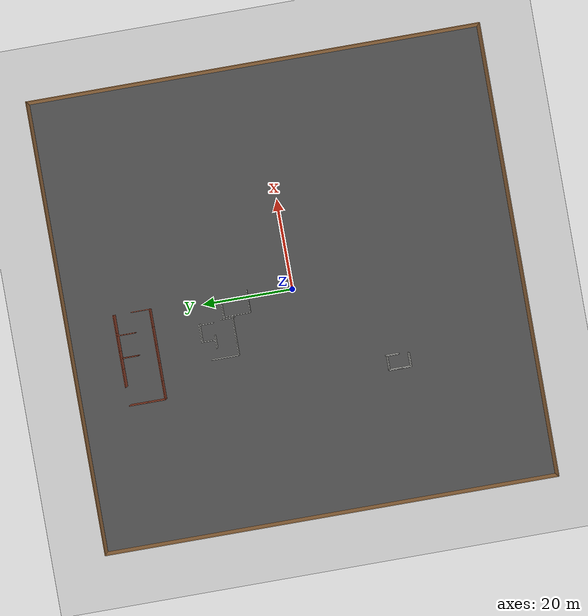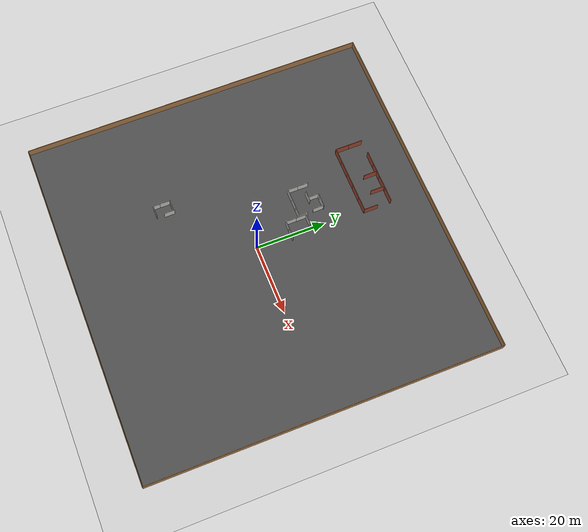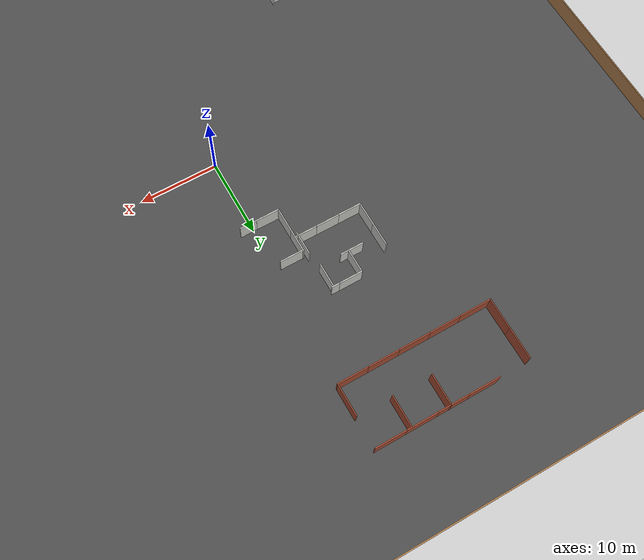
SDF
<sdf version="1.6">
 <world name="default">
  <model name="ground_plane">
   <static>1</static>
   <link name="link">
    <collision name="collision">
     <geometry><plane><normal>0 0 1</normal><size>100 100</size></plane></geometry>
     <surface><friction><ode><mu>100</mu><mu2>50</mu2></ode></friction></surface>
    </collision>
    <visual name="visual">
     <cast_shadows>0</cast_shadows>
     <geometry><plane><normal>0 0 1</normal><size>100 100</size></plane></geometry>
     <material>
      <script><uri>file://media/materials/scripts/gazebo.material</uri><name>Gazebo/Grey</name></script>
     </material>
    </visual>
   </link>
  </model>
  <model name="map_frame">
   <link name="Wall_0">
    <collision name="Wall_0_Collision">
     <geometry><box><size>100.05 0.15 2.5</size></box></geometry>
     <pose>0 0 1.25 0 -0 0</pose>
    </collision>
    <visual name="Wall_0_Visual">
     <pose>0 0 1.25 0 -0 0</pose>
     <geometry><box><size>100.05 0.15 2.5</size></box></geometry>
     <material>
      <script><uri>file://media/materials/scripts/gazebo.material</uri><name>Gazebo/Wood</name></script>
      <ambient>1 1 1 1</ambient>
     </material>
    </visual>
    <pose>0 50 0 0 -0 0</pose>
   </link>
   <link name="Wall_1">
    <collision name="Wall_1_Collision">
     <geometry><box><size>100.05 0.15 2.5</size></box></geometry>
     <pose>0 0 1.25 0 -0 0</pose>
    </collision>
    <visual name="Wall_1_Visual">
     <pose>0 0 1.25 0 -0 0</pose>
     <geometry><box><size>100.05 0.15 2.5</size></box></geometry>
     <material>
      <script><uri>file://media/materials/scripts/gazebo.material</uri><name>Gazebo/Wood</name></script>
      <ambient>1 1 1 1</ambient>
     </material>
    </visual>
    <pose>50 0 0 0 0 -1.5708</pose>
   </link>
   <link name="Wall_2">
    <collision name="Wall_2_Collision">
     <geometry><box><size>100.05 0.15 2.5</size></box></geometry>
     <pose>0 0 1.25 0 -0 0</pose>
    </collision>
    <visual name="Wall_2_Visual">
     <pose>0 0 1.25 0 -0 0</pose>
     <geometry><box><size>100.05 0.15 2.5</size></box></geometry>
     <material>
      <script><uri>file://media/materials/scripts/gazebo.material</uri><name>Gazebo/Wood</name></script>
      <ambient>1 1 1 1</ambient>
     </material>
    </visual>
    <pose>0 -50 0 0 -0 3.14159</pose>
   </link>
   <link name="Wall_3">
    <collision name="Wall_3_Collision">
     <geometry><box><size>100.05 0.15 2.5</size></box></geometry>
     <pose>0 0 1.25 0 -0 0</pose>
    </collision>
    <visual name="Wall_3_Visual">
     <pose>0 0 1.25 0 -0 0</pose>
     <geometry><box><size>100.05 0.15 2.5</size></box></geometry>
     <material>
      <script><uri>file://media/materials/scripts/gazebo.material</uri><name>Gazebo/Wood</name></script>
      <ambient>1 1 1 1</ambient>
     </material>
    </visual>
    <pose>-50 0 0 0 -0 1.5708</pose>
   </link>
   <static>1</static>
  </model>
  <model name="asphalt_plane">
   <static>1</static>
   <link name="link">
    <collision name="collision"><geometry><box><size>100 100 0.1</size></box></geometry></collision>
    <visual name="visual">
     <cast_shadows>0</cast_shadows>
     <geometry><box><size>100 100 0.1</size></box></geometry>
     <material>
      <script>
       <uri>model://asphalt_plane/materials/scripts</uri>
       <uri>model://asphalt_plane/materials/textures</uri>
       <name>vrc/asphalt</name>
      </script>
     </material>
    </visual>
   </link>
  </model>
  <model name="concrete_wall">
   <pose>-3.44413 14.4314 0 0 -0 0</pose>
   <link name="Wall_0">
    <collision name="Wall_0_Collision">
     <geometry><box><size>3 0.15 2.5</size></box></geometry>
     <pose>0 0 1.25 0 -0 0</pose>
    </collision>
    <visual name="Wall_0_Visual">
     <pose>0 0 1.25 0 -0 0</pose>
     <geometry><box><size>3 0.15 2.5</size></box></geometry>
     <material>
      <script><uri>file://media/materials/scripts/gazebo.material</uri><name>Gazebo/CeilingTiled</name></script>
      <ambient>1 1 1 1</ambient>
     </material>
     <meta><layer>0</layer></meta>
    </visual>
    <pose>0 0 0 0 -0 1.5708</pose>
   </link>
   <static>1</static>
  </model>
  <model name="concrete_wall_0">
   <pose>-3.44364 11.4407 0 0 -0 0</pose>
   <link name="Wall_0">
    <collision name="Wall_0_Collision">
     <geometry><box><size>3 0.15 2.5</size></box></geometry>
     <pose>0 0 1.25 0 -0 0</pose>
    </collision>
    <visual name="Wall_0_Visual">
     <pose>0 0 1.25 0 -0 0</pose>
     <geometry><box><size>3 0.15 2.5</size></box></geometry>
     <material>
      <script><uri>file://media/materials/scripts/gazebo.material</uri><name>Gazebo/CeilingTiled</name></script>
      <ambient>1 1 1 1</ambient>
     </material>
     <meta><layer>0</layer></meta>
    </visual>
    <pose>0 0 0 0 -0 1.5708</pose>
   </link>
   <static>1</static>
  </model>
  <model name="concrete_wall_3">
   <pose>-21.066 -21.2152 0 0 -0 0</pose>
   <link name="Wall_0">
    <collision name="Wall_0_Collision">
     <geometry><box><size>3 0.15 2.5</size></box></geometry>
     <pose>0 0 1.25 0 -0 0</pose>
    </collision>
    <visual name="Wall_0_Visual">
     <pose>0 0 1.25 0 -0 0</pose>
     <geometry><box><size>3 0.15 2.5</size></box></geometry>
     <material>
      <script><uri>file://media/materials/scripts/gazebo.material</uri><name>Gazebo/CeilingTiled</name></script>
      <ambient>1 1 1 1</ambient>
     </material>
     <meta><layer>0</layer></meta>
    </visual>
    <pose>0 0 0 0 -0 1.5708</pose>
   </link>
   <static>1</static>
  </model>
  <model name="concrete_wall_4">
   <pose>-21.0568 -19.2132 0 0 -0 0</pose>
   <link name="Wall_0">
    <collision name="Wall_0_Collision">
     <geometry><box><size>3 0.15 2.5</size></box></geometry>
     <pose>0 0 1.25 0 -0 0</pose>
    </collision>
    <visual name="Wall_0_Visual">
     <pose>0 0 1.25 0 -0 0</pose>
     <geometry><box><size>3 0.15 2.5</size></box></geometry>
     <material>
      <script><uri>file://media/materials/scripts/gazebo.material</uri><name>Gazebo/CeilingTiled</name></script>
      <ambient>1 1 1 1</ambient>
     </material>
     <meta><layer>0</layer></meta>
    </visual>
    <pose>0 0 0 0 -0 1.5708</pose>
   </link>
   <static>1</static>
  </model>
  <model name="concrete_wall_5">
   <pose>-17.8818 -19.0275 0 0 -0 0</pose>
   <link name="Wall_0">
    <collision name="Wall_0_Collision">
     <geometry><box><size>3 0.15 2.5</size></box></geometry>
     <pose>0 0 1.25 0 -0 0</pose>
    </collision>
    <visual name="Wall_0_Visual">
     <pose>0 0 1.25 0 -0 0</pose>
     <geometry><box><size>3 0.15 2.5</size></box></geometry>
     <material>
      <script><uri>file://media/materials/scripts/gazebo.material</uri><name>Gazebo/CeilingTiled</name></script>
      <ambient>1 1 1 1</ambient>
     </material>
     <meta><layer>0</layer></meta>
    </visual>
    <pose>0 0 0 0 -0 1.5708</pose>
   </link>
   <static>1</static>
  </model>
  <model name="concrete_wall_6_clone">
   <pose>-19.5085 -22.6271 0 0 -0 1.5708</pose>
   <link name="Wall_0">
    <collision name="Wall_0_Collision">
     <geometry><box><size>3 0.15 2.5</size></box></geometry>
     <pose>0 0 1.25 0 -0 0</pose>
    </collision>
    <visual name="Wall_0_Visual">
     <pose>0 0 1.25 0 -0 0</pose>
     <geometry><box><size>3 0.15 2.5</size></box></geometry>
     <material>
      <script><uri>file://media/materials/scripts/gazebo.material</uri><name>Gazebo/CeilingTiled</name></script>
      <ambient>1 1 1 1</ambient>
     </material>
     <meta><layer>0</layer></meta>
    </visual>
    <pose>0 0 0 0 -0 1.5708</pose>
   </link>
   <static>1</static>
  </model>
  <model name="concrete_wall_6_clone_0">
   <pose>-19.4814 -17.8466 0 0 -0 1.5708</pose>
   <link name="Wall_0">
    <collision name="Wall_0_Collision">
     <geometry><box><size>3 0.15 2.5</size></box></geometry>
     <pose>0 0 1.25 0 -0 0</pose>
    </collision>
    <visual name="Wall_0_Visual">
     <pose>0 0 1.25 0 -0 0</pose>
     <geometry><box><size>3 0.15 2.5</size></box></geometry>
     <material>
      <script><uri>file://media/materials/scripts/gazebo.material</uri><name>Gazebo/CeilingTiled</name></script>
      <ambient>1 1 1 1</ambient>
     </material>
     <meta><layer>0</layer></meta>
    </visual>
    <pose>0 0 0 0 -0 1.5708</pose>
   </link>
   <static>1</static>
  </model>
  <model name="concrete_wall_6_clone_5">
   <pose>0.16157 9.88256 0 0 -0 1.5708</pose>
   <link name="Wall_0">
    <collision name="Wall_0_Collision">
     <geometry><box><size>3 0.15 2.5</size></box></geometry>
     <pose>0 0 1.25 0 -0 0</pose>
    </collision>
    <visual name="Wall_0_Visual">
     <pose>0 0 1.25 0 -0 0</pose>
     <geometry><box><size>3 0.15 2.5</size></box></geometry>
     <material>
      <script><uri>file://media/materials/scripts/gazebo.material</uri><name>Gazebo/CeilingTiled</name></script>
      <ambient>1 1 1 1</ambient>
     </material>
     <meta><layer>0</layer></meta>
    </visual>
    <pose>0 0 0 0 -0 1.5708</pose>
   </link>
   <static>1</static>
  </model>
  <model name="concrete_wall_6_clone_6">
   <pose>-1.99874 9.88847 0 0 -0 1.5708</pose>
   <link name="Wall_0">
    <collision name="Wall_0_Collision">
     <geometry><box><size>3 0.15 2.5</size></box></geometry>
     <pose>0 0 1.25 0 -0 0</pose>
    </collision>
    <visual name="Wall_0_Visual">
     <pose>0 0 1.25 0 -0 0</pose>
     <geometry><box><size>3 0.15 2.5</size></box></geometry>
     <material>
      <script><uri>file://media/materials/scripts/gazebo.material</uri><name>Gazebo/CeilingTiled</name></script>
      <ambient>1 1 1 1</ambient>
     </material>
     <meta><layer>0</layer></meta>
    </visual>
    <pose>0 0 0 0 -0 1.5708</pose>
   </link>
   <static>1</static>
  </model>
  <model name="concrete_wall_6_clone_7">
   <pose>-1.94158 15.788 0 0 -0 1.5708</pose>
   <link name="Wall_0">
    <collision name="Wall_0_Collision">
     <geometry><box><size>3 0.15 2.5</size></box></geometry>
     <pose>0 0 1.25 0 -0 0</pose>
    </collision>
    <visual name="Wall_0_Visual">
     <pose>0 0 1.25 0 -0 0</pose>
     <geometry><box><size>3 0.15 2.5</size></box></geometry>
     <material>
      <script><uri>file://media/materials/scripts/gazebo.material</uri><name>Gazebo/CeilingTiled</name></script>
      <ambient>1 1 1 1</ambient>
     </material>
     <meta><layer>0</layer></meta>
    </visual>
    <pose>0 0 0 0 -0 1.5708</pose>
   </link>
   <static>1</static>
  </model>
  <model name="concrete_wall_6_clone_9">
   <pose>-10.7665 13.9394 0 0 -0 1.5708</pose>
   <link name="Wall_0">
    <collision name="Wall_0_Collision">
     <geometry><box><size>3 0.15 2.5</size></box></geometry>
     <pose>0 0 1.25 0 -0 0</pose>
    </collision>
    <visual name="Wall_0_Visual">
     <pose>0 0 1.25 0 -0 0</pose>
     <geometry><box><size>3 0.15 2.5</size></box></geometry>
     <material>
      <script><uri>file://media/materials/scripts/gazebo.material</uri><name>Gazebo/CeilingTiled</name></script>
      <ambient>1 1 1 1</ambient>
     </material>
     <meta><layer>0</layer></meta>
    </visual>
    <pose>0 0 0 0 -0 1.5708</pose>
   </link>
   <static>1</static>
  </model>
  <model name="concrete_wall_6_clone_10">
   <pose>-7.79777 13.9437 0 0 -0 1.5708</pose>
   <link name="Wall_0">
    <collision name="Wall_0_Collision">
     <geometry><box><size>3 0.15 2.5</size></box></geometry>
     <pose>0 0 1.25 0 -0 0</pose>
    </collision>
    <visual name="Wall_0_Visual">
     <pose>0 0 1.25 0 -0 0</pose>
     <geometry><box><size>3 0.15 2.5</size></box></geometry>
     <material>
      <script><uri>file://media/materials/scripts/gazebo.material</uri><name>Gazebo/CeilingTiled</name></script>
      <ambient>1 1 1 1</ambient>
     </material>
     <meta><layer>0</layer></meta>
    </visual>
    <pose>0 0 0 0 -0 1.5708</pose>
   </link>
   <static>1</static>
  </model>
  <model name="concrete_wall_6_clone_11">
   <pose>-5.01284 13.934 0 0 -0 1.5708</pose>
   <link name="Wall_0">
    <collision name="Wall_0_Collision">
     <geometry><box><size>3 0.15 2.5</size></box></geometry>
     <pose>0 0 1.25 0 -0 0</pose>
    </collision>
    <visual name="Wall_0_Visual">
     <pose>0 0 1.25 0 -0 0</pose>
     <geometry><box><size>3 0.15 2.5</size></box></geometry>
     <material>
      <script><uri>file://media/materials/scripts/gazebo.material</uri><name>Gazebo/CeilingTiled</name></script>
      <ambient>1 1 1 1</ambient>
     </material>
     <meta><layer>0</layer></meta>
    </visual>
    <pose>0 0 0 0 -0 1.5708</pose>
   </link>
   <static>1</static>
  </model>
  <model name="concrete_wall_6_clone_12">
   <pose>-6.55197 21.3742 0 0 -0 1.5708</pose>
   <link name="Wall_0">
    <collision name="Wall_0_Collision">
     <geometry><box><size>3 0.15 2.5</size></box></geometry>
     <pose>0 0 1.25 0 -0 0</pose>
    </collision>
    <visual name="Wall_0_Visual">
     <pose>0 0 1.25 0 -0 0</pose>
     <geometry><box><size>3 0.15 2.5</size></box></geometry>
     <material>
      <script><uri>file://media/materials/scripts/gazebo.material</uri><name>Gazebo/CeilingTiled</name></script>
      <ambient>1 1 1 1</ambient>
     </material>
     <meta><layer>0</layer></meta>
    </visual>
    <pose>0 0 0 0 -0 1.5708</pose>
   </link>
   <static>1</static>
  </model>
  <model name="concrete_wall_6_clone_13">
   <pose>-5.53068 21.3667 0 0 -0 1.5708</pose>
   <link name="Wall_0">
    <collision name="Wall_0_Collision">
     <geometry><box><size>3 0.15 2.5</size></box></geometry>
     <pose>0 0 1.25 0 -0 0</pose>
    </collision>
    <visual name="Wall_0_Visual">
     <pose>0 0 1.25 0 -0 0</pose>
     <geometry><box><size>3 0.15 2.5</size></box></geometry>
     <material>
      <script><uri>file://media/materials/scripts/gazebo.material</uri><name>Gazebo/CeilingTiled</name></script>
      <ambient>1 1 1 1</ambient>
     </material>
     <meta><layer>0</layer></meta>
    </visual>
    <pose>0 0 0 0 -0 1.5708</pose>
   </link>
   <static>1</static>
  </model>
  <model name="concrete_wall_10">
   <pose>-12.1983 15.5037 0 0 -0 0</pose>
   <link name="Wall_0">
    <collision name="Wall_0_Collision">
     <geometry><box><size>3 0.15 2.5</size></box></geometry>
     <pose>0 0 1.25 0 -0 0</pose>
    </collision>
    <visual name="Wall_0_Visual">
     <pose>0 0 1.25 0 -0 0</pose>
     <geometry><box><size>3 0.15 2.5</size></box></geometry>
     <material>
      <script><uri>file://media/materials/scripts/gazebo.material</uri><name>Gazebo/CeilingTiled</name></script>
      <ambient>1 1 1 1</ambient>
     </material>
     <meta><layer>0</layer></meta>
    </visual>
    <pose>0 0 0 0 -0 1.5708</pose>
   </link>
   <static>1</static>
  </model>
  <model name="concrete_wall_11">
   <pose>-12.197 18.4288 0 0 -0 0</pose>
   <link name="Wall_0">
    <collision name="Wall_0_Collision">
     <geometry><box><size>3 0.15 2.5</size></box></geometry>
     <pose>0 0 1.25 0 -0 0</pose>
    </collision>
    <visual name="Wall_0_Visual">
     <pose>0 0 1.25 0 -0 0</pose>
     <geometry><box><size>3 0.15 2.5</size></box></geometry>
     <material>
      <script><uri>file://media/materials/scripts/gazebo.material</uri><name>Gazebo/CeilingTiled</name></script>
      <ambient>1 1 1 1</ambient>
     </material>
     <meta><layer>0</layer></meta>
    </visual>
    <pose>0 0 0 0 -0 1.5708</pose>
   </link>
   <static>1</static>
  </model>
  <model name="concrete_wall_12">
   <pose>-4.28143 19.8004 0 0 -0 0</pose>
   <link name="Wall_0">
    <collision name="Wall_0_Collision">
     <geometry><box><size>3 0.15 2.5</size></box></geometry>
     <pose>0 0 1.25 0 -0 0</pose>
    </collision>
    <visual name="Wall_0_Visual">
     <pose>0 0 1.25 0 -0 0</pose>
     <geometry><box><size>3 0.15 2.5</size></box></geometry>
     <material>
      <script><uri>file://media/materials/scripts/gazebo.material</uri><name>Gazebo/CeilingTiled</name></script>
      <ambient>1 1 1 1</ambient>
     </material>
     <meta><layer>0</layer></meta>
    </visual>
    <pose>0 0 0 0 -0 1.5708</pose>
   </link>
   <static>1</static>
  </model>
  <model name="concrete_wall_13">
   <pose>-3.86438 15.0004 0 0 -0 0</pose>
   <link name="Wall_0">
    <collision name="Wall_0_Collision">
     <geometry><box><size>3 0.15 2.5</size></box></geometry>
     <pose>0 0 1.25 0 -0 0</pose>
    </collision>
    <visual name="Wall_0_Visual">
     <pose>0 0 1.25 0 -0 0</pose>
     <geometry><box><size>3 0.15 2.5</size></box></geometry>
     <material>
      <script><uri>file://media/materials/scripts/gazebo.material</uri><name>Gazebo/CeilingTiled</name></script>
      <ambient>1 1 1 1</ambient>
     </material>
     <meta><layer>0</layer></meta>
    </visual>
    <pose>0 0 0 0 -0 1.5708</pose>
   </link>
   <static>1</static>
  </model>
  <model name="concrete_wall_14">
   <pose>-8.00651 19.8559 0 0 -0 0</pose>
   <link name="Wall_0">
    <collision name="Wall_0_Collision">
     <geometry><box><size>3 0.15 2.5</size></box></geometry>
     <pose>0 0 1.25 0 -0 0</pose>
    </collision>
    <visual name="Wall_0_Visual">
     <pose>0 0 1.25 0 -0 0</pose>
     <geometry><box><size>3 0.15 2.5</size></box></geometry>
     <material>
      <script><uri>file://media/materials/scripts/gazebo.material</uri><name>Gazebo/CeilingTiled</name></script>
      <ambient>1 1 1 1</ambient>
     </material>
     <meta><layer>0</layer></meta>
    </visual>
    <pose>0 0 0 0 -0 1.5708</pose>
   </link>
   <static>1</static>
  </model>
  <model name="concrete_wall_6_clone_14">
   <pose>-8.44061 18.3913 0 0 -0 1.5708</pose>
   <link name="Wall_0">
    <collision name="Wall_0_Collision">
     <geometry><box><size>3 0.15 2.5</size></box></geometry>
     <pose>0 0 1.25 0 -0 0</pose>
    </collision>
    <visual name="Wall_0_Visual">
     <pose>0 0 1.25 0 -0 0</pose>
     <geometry><box><size>3 0.15 2.5</size></box></geometry>
     <material>
      <script><uri>file://media/materials/scripts/gazebo.material</uri><name>Gazebo/CeilingTiled</name></script>
      <ambient>1 1 1 1</ambient>
     </material>
     <meta><layer>0</layer></meta>
    </visual>
    <pose>0 0 0 0 -0 1.5708</pose>
   </link>
   <static>1</static>
  </model>
  <model name="brick_wall_2">
   <pose>-0.863663 31.3819 0 0 -0 0</pose>
   <link name="Wall_0">
    <collision name="Wall_0_Collision">
     <geometry><box><size>4 0.15 2.5</size></box></geometry>
     <pose>0 0 1.25 0 -0 0</pose>
    </collision>
    <visual name="Wall_0_Visual">
     <pose>0 0 1.25 0 -0 0</pose>
     <geometry><box><size>4 0.15 2.5</size></box></geometry>
     <material>
      <script><uri>file://media/materials/scripts/gazebo.material</uri><name>Gazebo/Bricks</name></script>
      <ambient>1 1 1 1</ambient>
     </material>
     <meta><layer>0</layer></meta>
    </visual>
   </link>
   <static>1</static>
  </model>
  <model name="brick_wall_2_clone">
   <pose>-4.86366 31.3819 0 0 -0 0</pose>
   <link name="Wall_0">
    <collision name="Wall_0_Collision">
     <geometry><box><size>4 0.15 2.5</size></box></geometry>
     <pose>0 0 1.25 0 -0 0</pose>
    </collision>
    <visual name="Wall_0_Visual">
     <pose>0 0 1.25 0 -0 0</pose>
     <geometry><box><size>4 0.15 2.5</size></box></geometry>
     <material>
      <script><uri>file://media/materials/scripts/gazebo.material</uri><name>Gazebo/Bricks</name></script>
      <ambient>1 1 1 1</ambient>
     </material>
     <meta><layer>0</layer></meta>
    </visual>
   </link>
   <static>1</static>
  </model>
  <model name="brick_wall_2_clone_0">
   <pose>-8.86366 31.3819 0 0 -0 0</pose>
   <link name="Wall_0">
    <collision name="Wall_0_Collision">
     <geometry><box><size>4 0.15 2.5</size></box></geometry>
     <pose>0 0 1.25 0 -0 0</pose>
    </collision>
    <visual name="Wall_0_Visual">
     <pose>0 0 1.25 0 -0 0</pose>
     <geometry><box><size>4 0.15 2.5</size></box></geometry>
     <material>
      <script><uri>file://media/materials/scripts/gazebo.material</uri><name>Gazebo/Bricks</name></script>
      <ambient>1 1 1 1</ambient>
     </material>
     <meta><layer>0</layer></meta>
    </visual>
   </link>
   <static>1</static>
  </model>
  <model name="brick_wall_2_clone_1">
   <pose>-12.8637 31.3819 0 0 -0 0</pose>
   <link name="Wall_0">
    <collision name="Wall_0_Collision">
     <geometry><box><size>4 0.15 2.5</size></box></geometry>
     <pose>0 0 1.25 0 -0 0</pose>
    </collision>
    <visual name="Wall_0_Visual">
     <pose>0 0 1.25 0 -0 0</pose>
     <geometry><box><size>4 0.15 2.5</size></box></geometry>
     <material>
      <script><uri>file://media/materials/scripts/gazebo.material</uri><name>Gazebo/Bricks</name></script>
      <ambient>1 1 1 1</ambient>
     </material>
     <meta><layer>0</layer></meta>
    </visual>
   </link>
   <static>1</static>
  </model>
  <model name="brick_wall_2_clone_2">
   <pose>-16.8637 31.3819 0 0 -0 0</pose>
   <link name="Wall_0">
    <collision name="Wall_0_Collision">
     <geometry><box><size>4 0.15 2.5</size></box></geometry>
     <pose>0 0 1.25 0 -0 0</pose>
    </collision>
    <visual name="Wall_0_Visual">
     <pose>0 0 1.25 0 -0 0</pose>
     <geometry><box><size>4 0.15 2.5</size></box></geometry>
     <material>
      <script><uri>file://media/materials/scripts/gazebo.material</uri><name>Gazebo/Bricks</name></script>
      <ambient>1 1 1 1</ambient>
     </material>
     <meta><layer>0</layer></meta>
    </visual>
   </link>
   <static>1</static>
  </model>
  <model name="brick_wall_2_clone_3">
   <pose>-0.863663 39.3819 0 0 -0 0</pose>
   <link name="Wall_0">
    <collision name="Wall_0_Collision">
     <geometry><box><size>4 0.15 2.5</size></box></geometry>
     <pose>0 0 1.25 0 -0 0</pose>
    </collision>
    <visual name="Wall_0_Visual">
     <pose>0 0 1.25 0 -0 0</pose>
     <geometry><box><size>4 0.15 2.5</size></box></geometry>
     <material>
      <script><uri>file://media/materials/scripts/gazebo.material</uri><name>Gazebo/Bricks</name></script>
      <ambient>1 1 1 1</ambient>
     </material>
     <meta><layer>0</layer></meta>
    </visual>
   </link>
   <static>1</static>
  </model>
  <model name="brick_wall_2_clone_4">
   <pose>-4.86366 39.3819 0 0 -0 0</pose>
   <link name="Wall_0">
    <collision name="Wall_0_Collision">
     <geometry><box><size>4 0.15 2.5</size></box></geometry>
     <pose>0 0 1.25 0 -0 0</pose>
    </collision>
    <visual name="Wall_0_Visual">
     <pose>0 0 1.25 0 -0 0</pose>
     <geometry><box><size>4 0.15 2.5</size></box></geometry>
     <material>
      <script><uri>file://media/materials/scripts/gazebo.material</uri><name>Gazebo/Bricks</name></script>
      <ambient>1 1 1 1</ambient>
     </material>
     <meta><layer>0</layer></meta>
    </visual>
   </link>
   <static>1</static>
  </model>
  <model name="brick_wall_2_clone_5">
   <pose>-8.86366 39.3819 0 0 -0 0</pose>
   <link name="Wall_0">
    <collision name="Wall_0_Collision">
     <geometry><box><size>4 0.15 2.5</size></box></geometry>
     <pose>0 0 1.25 0 -0 0</pose>
    </collision>
    <visual name="Wall_0_Visual">
     <pose>0 0 1.25 0 -0 0</pose>
     <geometry><box><size>4 0.15 2.5</size></box></geometry>
     <material>
      <script><uri>file://media/materials/scripts/gazebo.material</uri><name>Gazebo/Bricks</name></script>
      <ambient>1 1 1 1</ambient>
     </material>
     <meta><layer>0</layer></meta>
    </visual>
   </link>
   <static>1</static>
  </model>
  <model name="brick_wall_2_clone_6">
   <pose>-12.8637 39.3819 0 0 -0 0</pose>
   <link name="Wall_0">
    <collision name="Wall_0_Collision">
     <geometry><box><size>4 0.15 2.5</size></box></geometry>
     <pose>0 0 1.25 0 -0 0</pose>
    </collision>
    <visual name="Wall_0_Visual">
     <pose>0 0 1.25 0 -0 0</pose>
     <geometry><box><size>4 0.15 2.5</size></box></geometry>
     <material>
      <script><uri>file://media/materials/scripts/gazebo.material</uri><name>Gazebo/Bricks</name></script>
      <ambient>1 1 1 1</ambient>
     </material>
     <meta><layer>0</layer></meta>
    </visual>
   </link>
   <static>1</static>
  </model>
  <model name="brick_wall_3">
   <pose>1.06218 33.4428 0 0 -0 1.57079</pose>
   <link name="Wall_0">
    <collision name="Wall_0_Collision">
     <geometry><box><size>4 0.15 2.5</size></box></geometry>
     <pose>0 0 1.25 0 -0 0</pose>
    </collision>
    <visual name="Wall_0_Visual">
     <pose>0 0 1.25 0 -0 0</pose>
     <geometry><box><size>4 0.15 2.5</size></box></geometry>
     <material>
      <script><uri>file://media/materials/scripts/gazebo.material</uri><name>Gazebo/Bricks</name></script>
      <ambient>1 1 1 1</ambient>
     </material>
     <meta><layer>0</layer></meta>
    </visual>
   </link>
   <static>1</static>
  </model>
  <model name="brick_wall_3_clone_0">
   <pose>-18.914 33.2967 0 0 -0 1.57079</pose>
   <link name="Wall_0">
    <collision name="Wall_0_Collision">
     <geometry><box><size>4 0.15 2.5</size></box></geometry>
     <pose>0 0 1.25 0 -0 0</pose>
    </collision>
    <visual name="Wall_0_Visual">
     <pose>0 0 1.25 0 -0 0</pose>
     <geometry><box><size>4 0.15 2.5</size></box></geometry>
     <material>
      <script><uri>file://media/materials/scripts/gazebo.material</uri><name>Gazebo/Bricks</name></script>
      <ambient>1 1 1 1</ambient>
     </material>
     <meta><layer>0</layer></meta>
    </visual>
   </link>
   <static>1</static>
  </model>
  <model name="brick_wall_3_clone_1">
   <pose>-18.914 37.2967 0 0 -0 1.57079</pose>
   <link name="Wall_0">
    <collision name="Wall_0_Collision">
     <geometry><box><size>4 0.15 2.5</size></box></geometry>
     <pose>0 0 1.25 0 -0 0</pose>
    </collision>
    <visual name="Wall_0_Visual">
     <pose>0 0 1.25 0 -0 0</pose>
     <geometry><box><size>4 0.15 2.5</size></box></geometry>
     <material>
      <script><uri>file://media/materials/scripts/gazebo.material</uri><name>Gazebo/Bricks</name></script>
      <ambient>1 1 1 1</ambient>
     </material>
     <meta><layer>0</layer></meta>
    </visual>
   </link>
   <static>1</static>
  </model>
  <model name="brick_wall_3_clone_2">
   <pose>-3.48128 37.3947 0 0 -0 1.57079</pose>
   <link name="Wall_0">
    <collision name="Wall_0_Collision">
     <geometry><box><size>4 0.15 2.5</size></box></geometry>
     <pose>0 0 1.25 0 -0 0</pose>
    </collision>
    <visual name="Wall_0_Visual">
     <pose>0 0 1.25 0 -0 0</pose>
     <geometry><box><size>4 0.15 2.5</size></box></geometry>
     <material>
      <script><uri>file://media/materials/scripts/gazebo.material</uri><name>Gazebo/Bricks</name></script>
      <ambient>1 1 1 1</ambient>
     </material>
     <meta><layer>0</layer></meta>
    </visual>
   </link>
   <static>1</static>
  </model>
  <model name="brick_wall_3_clone_3">
   <pose>-8.49204 37.4632 0 0 -0 1.57079</pose>
   <link name="Wall_0">
    <collision name="Wall_0_Collision">
     <geometry><box><size>4 0.15 2.5</size></box></geometry>
     <pose>0 0 1.25 0 -0 0</pose>
    </collision>
    <visual name="Wall_0_Visual">
     <pose>0 0 1.25 0 -0 0</pose>
     <geometry><box><size>4 0.15 2.5</size></box></geometry>
     <material>
      <script><uri>file://media/materials/scripts/gazebo.material</uri><name>Gazebo/Bricks</name></script>
      <ambient>1 1 1 1</ambient>
     </material>
     <meta><layer>0</layer></meta>
    </visual>
   </link>
   <static>1</static>
  </model>
 </world>
</sdf>
